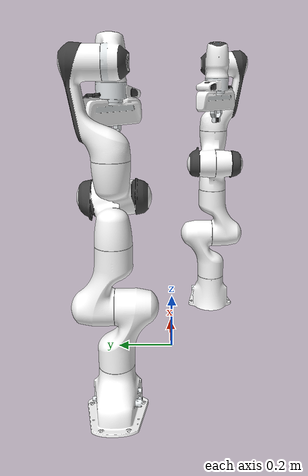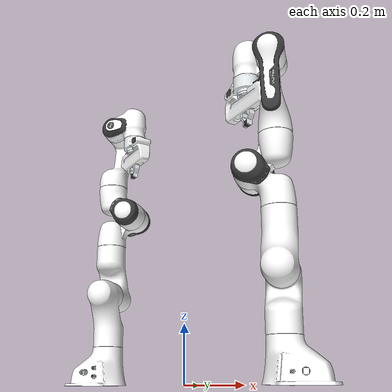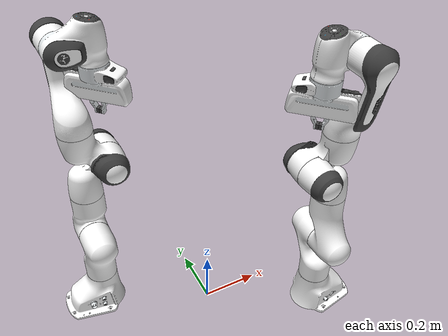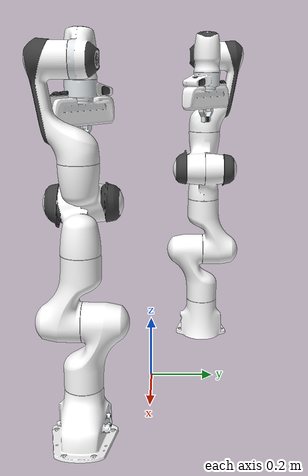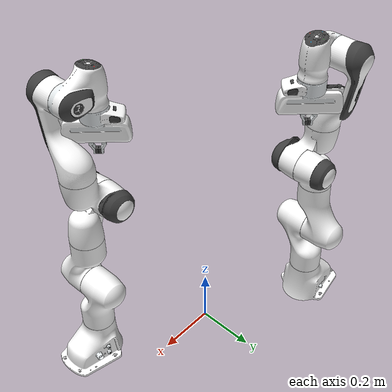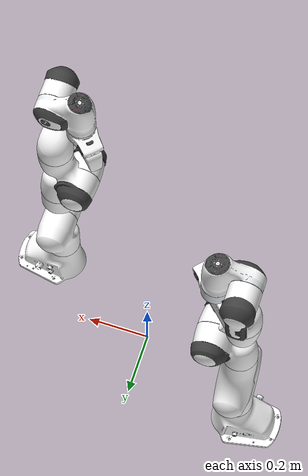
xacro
<?xml version="1.0"?>
<robot xmlns:xacro="http://www.ros.org/wiki/xacro" name="dual_panda">
  <link name="world" />
  <link name="dual_arm_base_link" />

  <joint name="world_joint" type="fixed">
    <parent link="world" />
    <child link="dual_arm_base_link" />
    <origin xyz="0 0 0" rpy="0 0 0" />
  </joint>

  <xacro:macro name="panda_arm" params="prefix parent xyz rpy">
    <joint name="${prefix}base_joint" type="fixed">
      <parent link="${parent}" />
      <child link="${prefix}link0" />
      <origin xyz="${xyz}" rpy="${rpy}" />
    </joint>

    <link name="${prefix}link0">
      <visual>
        <geometry>
          <mesh filename="package://moveit_resources_panda_description/meshes/visual/link0.dae" />
        </geometry>
      </visual>
      <collision>
        <geometry>
          <mesh filename="package://moveit_resources_panda_description/meshes/collision/link0.stl" />
        </geometry>
      </collision>
    </link>

    <link name="${prefix}link1">
      <visual>
        <geometry>
          <mesh filename="package://moveit_resources_panda_description/meshes/visual/link1.dae" />
        </geometry>
      </visual>
      <collision>
        <geometry>
          <mesh filename="package://moveit_resources_panda_description/meshes/collision/link1.stl" />
        </geometry>
      </collision>
    </link>
    <joint name="${prefix}joint1" type="revolute">
      <safety_controller k_position="100.0" k_velocity="40.0" soft_lower_limit="-2.8973" soft_upper_limit="2.8973" />
      <origin rpy="0 0 0" xyz="0 0 0.333" />
      <parent link="${prefix}link0" />
      <child link="${prefix}link1" />
      <axis xyz="0 0 1" />
      <limit effort="87" lower="-2.9671" upper="2.9671" velocity="2.3925" />
    </joint>

    <link name="${prefix}link2">
      <visual>
        <geometry>
          <mesh filename="package://moveit_resources_panda_description/meshes/visual/link2.dae" />
        </geometry>
      </visual>
      <collision>
        <geometry>
          <mesh filename="package://moveit_resources_panda_description/meshes/collision/link2.stl" />
        </geometry>
      </collision>
    </link>
    <joint name="${prefix}joint2" type="revolute">
      <safety_controller k_position="100.0" k_velocity="40.0" soft_lower_limit="-1.7628" soft_upper_limit="1.7628" />
      <origin rpy="-1.57079632679 0 0" xyz="0 0 0" />
      <parent link="${prefix}link1" />
      <child link="${prefix}link2" />
      <axis xyz="0 0 1" />
      <limit effort="87" lower="-1.8326" upper="1.8326" velocity="2.3925" />
    </joint>

    <link name="${prefix}link3">
      <visual>
        <geometry>
          <mesh filename="package://moveit_resources_panda_description/meshes/visual/link3.dae" />
        </geometry>
      </visual>
      <collision>
        <geometry>
          <mesh filename="package://moveit_resources_panda_description/meshes/collision/link3.stl" />
        </geometry>
      </collision>
    </link>
    <joint name="${prefix}joint3" type="revolute">
      <safety_controller k_position="100.0" k_velocity="40.0" soft_lower_limit="-2.8973" soft_upper_limit="2.8973" />
      <origin rpy="1.57079632679 0 0" xyz="0 -0.316 0" />
      <parent link="${prefix}link2" />
      <child link="${prefix}link3" />
      <axis xyz="0 0 1" />
      <limit effort="87" lower="-2.9671" upper="2.9671" velocity="2.3925" />
    </joint>

    <link name="${prefix}link4">
      <visual>
        <geometry>
          <mesh filename="package://moveit_resources_panda_description/meshes/visual/link4.dae" />
        </geometry>
      </visual>
      <collision>
        <geometry>
          <mesh filename="package://moveit_resources_panda_description/meshes/collision/link4.stl" />
        </geometry>
      </collision>
    </link>
    <joint name="${prefix}joint4" type="revolute">
      <safety_controller k_position="100.0" k_velocity="40.0" soft_lower_limit="-3.0718" soft_upper_limit="0.0175" />
      <origin rpy="1.57079632679 0 0" xyz="0.0825 0 0" />
      <parent link="${prefix}link3" />
      <child link="${prefix}link4" />
      <axis xyz="0 0 1" />
      <limit effort="87" lower="-3.1416" upper="0.0873" velocity="2.3925" />
    </joint>

    <link name="${prefix}link5">
      <visual>
        <geometry>
          <mesh filename="package://moveit_resources_panda_description/meshes/visual/link5.dae" />
        </geometry>
      </visual>
      <collision>
        <geometry>
          <mesh filename="package://moveit_resources_panda_description/meshes/collision/link5.stl" />
        </geometry>
      </collision>
    </link>
    <joint name="${prefix}joint5" type="revolute">
      <safety_controller k_position="100.0" k_velocity="40.0" soft_lower_limit="-2.8973" soft_upper_limit="2.8973" />
      <origin rpy="-1.57079632679 0 0" xyz="-0.0825 0.384 0" />
      <parent link="${prefix}link4" />
      <child link="${prefix}link5" />
      <axis xyz="0 0 1" />
      <limit effort="12" lower="-2.9671" upper="2.9671" velocity="2.8710" />
    </joint>

    <link name="${prefix}link6">
      <visual>
        <geometry>
          <mesh filename="package://moveit_resources_panda_description/meshes/visual/link6.dae" />
        </geometry>
      </visual>
      <collision>
        <geometry>
          <mesh filename="package://moveit_resources_panda_description/meshes/collision/link6.stl" />
        </geometry>
      </collision>
    </link>
    <joint name="${prefix}joint6" type="revolute">
      <safety_controller k_position="100.0" k_velocity="40.0" soft_lower_limit="-0.0175" soft_upper_limit="3.7525" />
      <origin rpy="1.57079632679 0 0" xyz="0 0 0" />
      <parent link="${prefix}link5" />
      <child link="${prefix}link6" />
      <axis xyz="0 0 1" />
      <limit effort="12" lower="-0.0873" upper="3.8223" velocity="2.8710" />
    </joint>

    <link name="${prefix}link7">
      <visual>
        <geometry>
          <mesh filename="package://moveit_resources_panda_description/meshes/visual/link7.dae" />
        </geometry>
      </visual>
      <collision>
        <geometry>
          <mesh filename="package://moveit_resources_panda_description/meshes/collision/link7.stl" />
        </geometry>
      </collision>
    </link>
    <joint name="${prefix}joint7" type="revolute">
      <safety_controller k_position="100.0" k_velocity="40.0" soft_lower_limit="-2.8973" soft_upper_limit="2.8973" />
      <origin rpy="1.57079632679 0 0" xyz="0.088 0 0" />
      <parent link="${prefix}link6" />
      <child link="${prefix}link7" />
      <axis xyz="0 0 1" />
      <limit effort="12" lower="-2.9671" upper="2.9671" velocity="2.8710" />
    </joint>

    <link name="${prefix}link8" />
    <joint name="${prefix}joint8" type="fixed">
      <origin rpy="0 0 0" xyz="0 0 0.107" />
      <parent link="${prefix}link7" />
      <child link="${prefix}link8" />
    </joint>

    <link name="${prefix}hand">
      <visual>
        <geometry>
          <mesh filename="package://moveit_resources_panda_description/meshes/visual/hand.dae" />
        </geometry>
      </visual>
      <collision>
        <geometry>
          <mesh filename="package://moveit_resources_panda_description/meshes/collision/hand.stl" />
        </geometry>
      </collision>
    </link>
    <joint name="${prefix}hand_joint" type="fixed">
      <parent link="${prefix}link8" />
      <child link="${prefix}hand" />
      <origin rpy="0 0 -0.785398163397" xyz="0 0 0" />
    </joint>

    <link name="${prefix}leftfinger">
      <visual>
        <geometry>
          <mesh filename="package://moveit_resources_panda_description/meshes/visual/finger.dae" />
        </geometry>
      </visual>
      <collision>
        <geometry>
          <mesh filename="package://moveit_resources_panda_description/meshes/collision/finger.stl" />
        </geometry>
      </collision>
    </link>
    <joint name="${prefix}finger_joint1" type="prismatic">
      <parent link="${prefix}hand" />
      <child link="${prefix}leftfinger" />
      <origin rpy="0 0 0" xyz="0 0 0.0584" />
      <axis xyz="0 1 0" />
      <limit effort="20" lower="0.0" upper="0.04" velocity="0.2" />
    </joint>

    <link name="${prefix}rightfinger">
      <visual>
        <origin rpy="0 0 3.14159265359" xyz="0 0 0" />
        <geometry>
          <mesh filename="package://moveit_resources_panda_description/meshes/visual/finger.dae" />
        </geometry>
      </visual>
      <collision>
        <origin rpy="0 0 3.14159265359" xyz="0 0 0" />
        <geometry>
          <mesh filename="package://moveit_resources_panda_description/meshes/collision/finger.stl" />
        </geometry>
      </collision>
    </link>
    <joint name="${prefix}finger_joint2" type="prismatic">
      <parent link="${prefix}hand" />
      <child link="${prefix}rightfinger" />
      <origin rpy="0 0 0" xyz="0 0 0.0584" />
      <axis xyz="0 -1 0" />
      <limit effort="20" lower="0.0" upper="0.04" velocity="0.2" />
      <mimic joint="${prefix}finger_joint1" />
    </joint>
  </xacro:macro>

  <xacro:panda_arm prefix="left_panda_" parent="dual_arm_base_link" xyz="-0.35 0.18 0.0" rpy="0 0 0" />
  <xacro:panda_arm prefix="right_panda_" parent="dual_arm_base_link" xyz="0.35 -0.18 0.0" rpy="0 0 ${pi}" />
</robot>
